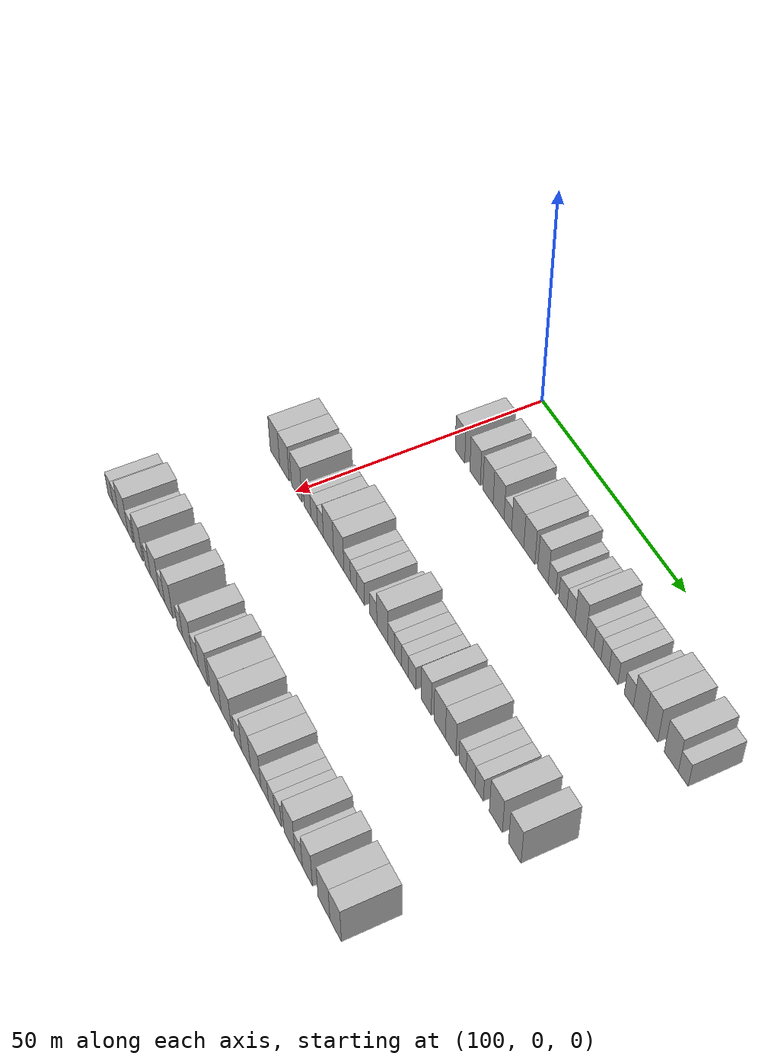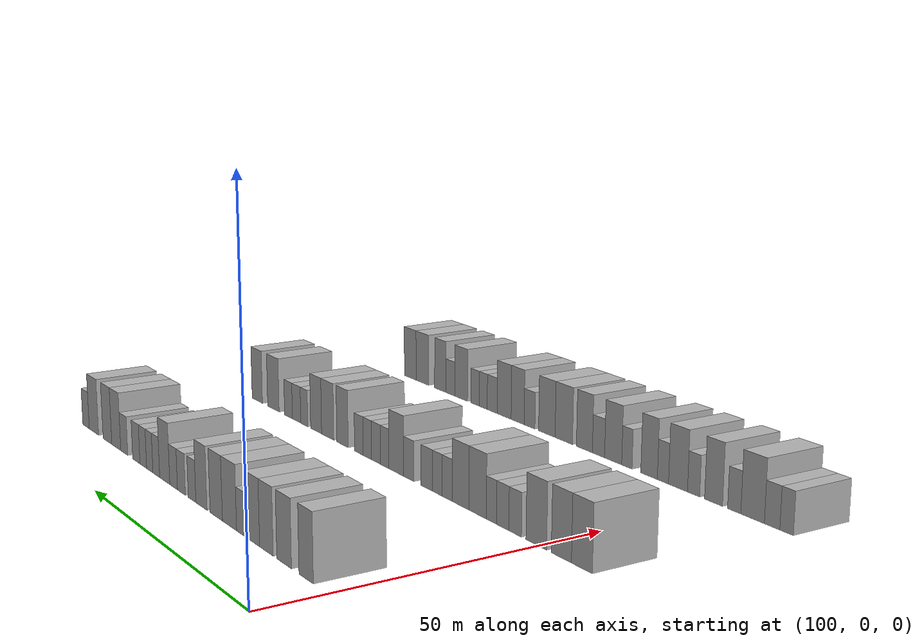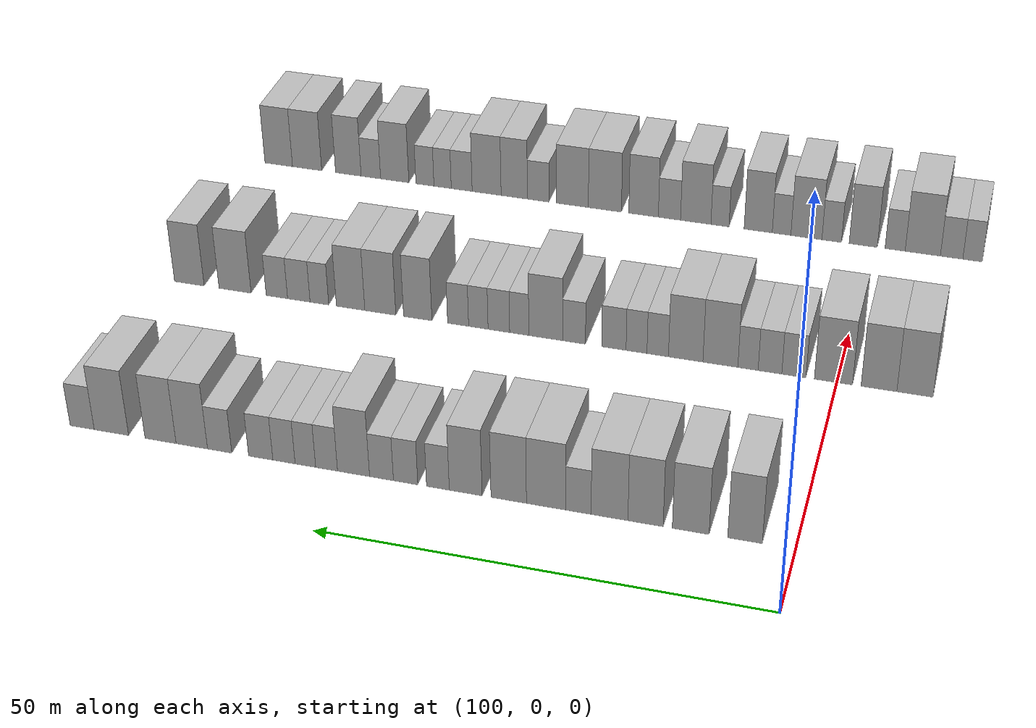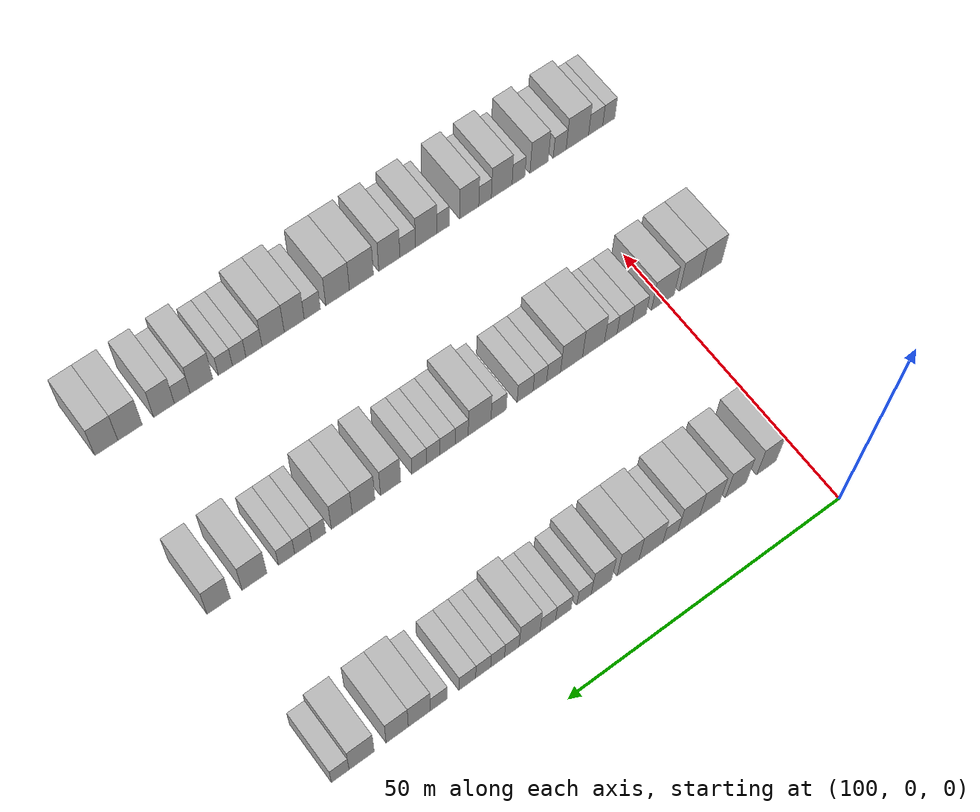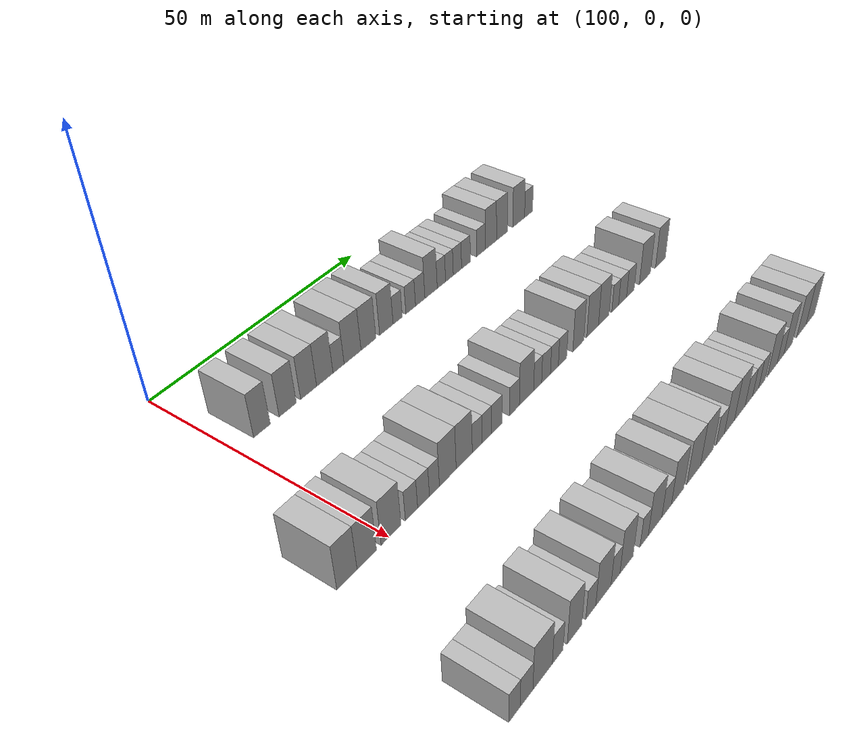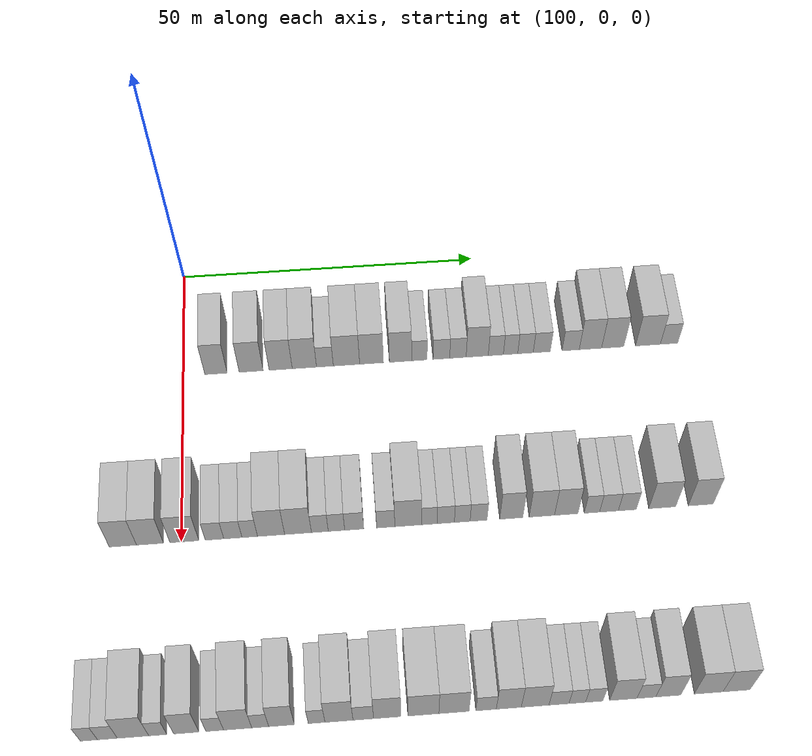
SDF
<sdf version="1.6">
 <world name="default">
  <model name="building_800">
   <static>1</static>
   <pose>115.0000 5.4240 0 0.000000 0.000000 0.000000</pose>
   <link name="link">
    <pose>0 0 4.50 0 0 0</pose>
    <collision name="collision"><geometry><box><size>10.0000 3.6990 9.0000</size></box></geometry></collision>
    <visual name="visual">
     <cast_shadows>0</cast_shadows>
     <geometry><box><size>10.0000 3.6990 9.0000</size></box></geometry>
     <material>
      <script>
       <uri>model://HANNAS_wall/materials/scripts</uri>
       <uri>model://HANNAS_wall/materials/textures</uri>
       <name>vrc/HANNAS_wall</name>
      </script>
     </material>
    </visual>
   </link>
  </model>
  <model name="building_801">
   <static>1</static>
   <pose>115.0000 11.2626 0 0.000000 0.000000 0.000000</pose>
   <link name="link">
    <pose>0 0 4.50 0 0 0</pose>
    <collision name="collision"><geometry><box><size>10.0000 3.9781 9.0000</size></box></geometry></collision>
    <visual name="visual">
     <cast_shadows>0</cast_shadows>
     <geometry><box><size>10.0000 3.9781 9.0000</size></box></geometry>
     <material>
      <script>
       <uri>model://HANNAS_wall/materials/scripts</uri>
       <uri>model://HANNAS_wall/materials/textures</uri>
       <name>vrc/HANNAS_wall</name>
      </script>
     </material>
    </visual>
   </link>
  </model>
  <model name="building_802">
   <static>1</static>
   <pose>115.0000 16.1757 0 0.000000 0.000000 0.000000</pose>
   <link name="link">
    <pose>0 0 4.50 0 0 0</pose>
    <collision name="collision"><geometry><box><size>10.0000 3.8481 9.0000</size></box></geometry></collision>
    <visual name="visual">
     <cast_shadows>0</cast_shadows>
     <geometry><box><size>10.0000 3.8481 9.0000</size></box></geometry>
     <material>
      <script>
       <uri>model://HANNAS_wall/materials/scripts</uri>
       <uri>model://HANNAS_wall/materials/textures</uri>
       <name>vrc/HANNAS_wall</name>
      </script>
     </material>
    </visual>
   </link>
  </model>
  <model name="building_803">
   <static>1</static>
   <pose>115.0000 20.1209 0 0.000000 0.000000 0.000000</pose>
   <link name="link">
    <pose>0 0 4.50 0 0 0</pose>
    <collision name="collision"><geometry><box><size>10.0000 4.0424 9.0000</size></box></geometry></collision>
    <visual name="visual">
     <cast_shadows>0</cast_shadows>
     <geometry><box><size>10.0000 4.0424 9.0000</size></box></geometry>
     <material>
      <script>
       <uri>model://HANNAS_wall/materials/scripts</uri>
       <uri>model://HANNAS_wall/materials/textures</uri>
       <name>vrc/HANNAS_wall</name>
      </script>
     </material>
    </visual>
   </link>
  </model>
  <model name="building_804">
   <static>1</static>
   <pose>115.0000 23.5391 0 0.000000 0.000000 0.000000</pose>
   <link name="link">
    <pose>0 0 3.00 0 0 0</pose>
    <collision name="collision"><geometry><box><size>10.0000 2.7940 6.0000</size></box></geometry></collision>
    <visual name="visual">
     <cast_shadows>0</cast_shadows>
     <geometry><box><size>10.0000 2.7940 6.0000</size></box></geometry>
     <material>
      <script>
       <uri>model://HANNAS_wall/materials/scripts</uri>
       <uri>model://HANNAS_wall/materials/textures</uri>
       <name>vrc/HANNAS_wall</name>
      </script>
     </material>
    </visual>
   </link>
  </model>
  <model name="building_805">
   <static>1</static>
   <pose>115.0000 27.1337 0 0.000000 0.000000 0.000000</pose>
   <link name="link">
    <pose>0 0 4.50 0 0 0</pose>
    <collision name="collision"><geometry><box><size>10.0000 4.3952 9.0000</size></box></geometry></collision>
    <visual name="visual">
     <cast_shadows>0</cast_shadows>
     <geometry><box><size>10.0000 4.3952 9.0000</size></box></geometry>
     <material>
      <script>
       <uri>model://HANNAS_wall/materials/scripts</uri>
       <uri>model://HANNAS_wall/materials/textures</uri>
       <name>vrc/HANNAS_wall</name>
      </script>
     </material>
    </visual>
   </link>
  </model>
  <model name="building_806">
   <static>1</static>
   <pose>115.0000 31.3223 0 0.000000 0.000000 0.000000</pose>
   <link name="link">
    <pose>0 0 4.50 0 0 0</pose>
    <collision name="collision"><geometry><box><size>10.0000 3.9819 9.0000</size></box></geometry></collision>
    <visual name="visual">
     <cast_shadows>0</cast_shadows>
     <geometry><box><size>10.0000 3.9819 9.0000</size></box></geometry>
     <material>
      <script>
       <uri>model://HANNAS_wall/materials/scripts</uri>
       <uri>model://HANNAS_wall/materials/textures</uri>
       <name>vrc/HANNAS_wall</name>
      </script>
     </material>
    </visual>
   </link>
  </model>
  <model name="building_807">
   <static>1</static>
   <pose>115.0000 36.1753 0 0.000000 0.000000 0.000000</pose>
   <link name="link">
    <pose>0 0 4.50 0 0 0</pose>
    <collision name="collision"><geometry><box><size>10.0000 3.7242 9.0000</size></box></geometry></collision>
    <visual name="visual">
     <cast_shadows>0</cast_shadows>
     <geometry><box><size>10.0000 3.7242 9.0000</size></box></geometry>
     <material>
      <script>
       <uri>model://HANNAS_wall/materials/scripts</uri>
       <uri>model://HANNAS_wall/materials/textures</uri>
       <name>vrc/HANNAS_wall</name>
      </script>
     </material>
    </visual>
   </link>
  </model>
  <model name="building_808">
   <static>1</static>
   <pose>115.0000 39.3347 0 0.000000 0.000000 0.000000</pose>
   <link name="link">
    <pose>0 0 3.00 0 0 0</pose>
    <collision name="collision"><geometry><box><size>10.0000 2.5946 6.0000</size></box></geometry></collision>
    <visual name="visual">
     <cast_shadows>0</cast_shadows>
     <geometry><box><size>10.0000 2.5946 6.0000</size></box></geometry>
     <material>
      <script>
       <uri>model://HANNAS_wall/materials/scripts</uri>
       <uri>model://HANNAS_wall/materials/textures</uri>
       <name>vrc/HANNAS_wall</name>
      </script>
     </material>
    </visual>
   </link>
  </model>
  <model name="building_809">
   <static>1</static>
   <pose>115.0000 43.0325 0 0.000000 0.000000 0.000000</pose>
   <link name="link">
    <pose>0 0 3.00 0 0 0</pose>
    <collision name="collision"><geometry><box><size>10.0000 2.8008 6.0000</size></box></geometry></collision>
    <visual name="visual">
     <cast_shadows>0</cast_shadows>
     <geometry><box><size>10.0000 2.8008 6.0000</size></box></geometry>
     <material>
      <script>
       <uri>model://HANNAS_wall/materials/scripts</uri>
       <uri>model://HANNAS_wall/materials/textures</uri>
       <name>vrc/HANNAS_wall</name>
      </script>
     </material>
    </visual>
   </link>
  </model>
  <model name="building_810">
   <static>1</static>
   <pose>115.0000 45.8110 0 0.000000 0.000000 0.000000</pose>
   <link name="link">
    <pose>0 0 3.00 0 0 0</pose>
    <collision name="collision"><geometry><box><size>10.0000 2.7562 6.0000</size></box></geometry></collision>
    <visual name="visual">
     <cast_shadows>0</cast_shadows>
     <geometry><box><size>10.0000 2.7562 6.0000</size></box></geometry>
     <material>
      <script>
       <uri>model://HANNAS_wall/materials/scripts</uri>
       <uri>model://HANNAS_wall/materials/textures</uri>
       <name>vrc/HANNAS_wall</name>
      </script>
     </material>
    </visual>
   </link>
  </model>
  <model name="building_811">
   <static>1</static>
   <pose>115.0000 49.0507 0 0.000000 0.000000 0.000000</pose>
   <link name="link">
    <pose>0 0 4.50 0 0 0</pose>
    <collision name="collision"><geometry><box><size>10.0000 3.7231 9.0000</size></box></geometry></collision>
    <visual name="visual">
     <cast_shadows>0</cast_shadows>
     <geometry><box><size>10.0000 3.7231 9.0000</size></box></geometry>
     <material>
      <script>
       <uri>model://HANNAS_wall/materials/scripts</uri>
       <uri>model://HANNAS_wall/materials/textures</uri>
       <name>vrc/HANNAS_wall</name>
      </script>
     </material>
    </visual>
   </link>
  </model>
  <model name="building_812">
   <static>1</static>
   <pose>115.0000 52.1887 0 0.000000 0.000000 0.000000</pose>
   <link name="link">
    <pose>0 0 3.00 0 0 0</pose>
    <collision name="collision"><geometry><box><size>10.0000 2.5530 6.0000</size></box></geometry></collision>
    <visual name="visual">
     <cast_shadows>0</cast_shadows>
     <geometry><box><size>10.0000 2.5530 6.0000</size></box></geometry>
     <material>
      <script>
       <uri>model://HANNAS_wall/materials/scripts</uri>
       <uri>model://HANNAS_wall/materials/textures</uri>
       <name>vrc/HANNAS_wall</name>
      </script>
     </material>
    </visual>
   </link>
  </model>
  <model name="building_813">
   <static>1</static>
   <pose>115.0000 54.6714 0 0.000000 0.000000 0.000000</pose>
   <link name="link">
    <pose>0 0 3.00 0 0 0</pose>
    <collision name="collision"><geometry><box><size>10.0000 2.4124 6.0000</size></box></geometry></collision>
    <visual name="visual">
     <cast_shadows>0</cast_shadows>
     <geometry><box><size>10.0000 2.4124 6.0000</size></box></geometry>
     <material>
      <script>
       <uri>model://HANNAS_wall/materials/scripts</uri>
       <uri>model://HANNAS_wall/materials/textures</uri>
       <name>vrc/HANNAS_wall</name>
      </script>
     </material>
    </visual>
   </link>
  </model>
  <model name="building_814">
   <static>1</static>
   <pose>115.0000 57.1901 0 0.000000 0.000000 0.000000</pose>
   <link name="link">
    <pose>0 0 3.00 0 0 0</pose>
    <collision name="collision"><geometry><box><size>10.0000 2.6251 6.0000</size></box></geometry></collision>
    <visual name="visual">
     <cast_shadows>0</cast_shadows>
     <geometry><box><size>10.0000 2.6251 6.0000</size></box></geometry>
     <material>
      <script>
       <uri>model://HANNAS_wall/materials/scripts</uri>
       <uri>model://HANNAS_wall/materials/textures</uri>
       <name>vrc/HANNAS_wall</name>
      </script>
     </material>
    </visual>
   </link>
  </model>
  <model name="building_815">
   <static>1</static>
   <pose>115.0000 59.9398 0 0.000000 0.000000 0.000000</pose>
   <link name="link">
    <pose>0 0 3.00 0 0 0</pose>
    <collision name="collision"><geometry><box><size>10.0000 2.8742 6.0000</size></box></geometry></collision>
    <visual name="visual">
     <cast_shadows>0</cast_shadows>
     <geometry><box><size>10.0000 2.8742 6.0000</size></box></geometry>
     <material>
      <script>
       <uri>model://HANNAS_wall/materials/scripts</uri>
       <uri>model://HANNAS_wall/materials/textures</uri>
       <name>vrc/HANNAS_wall</name>
      </script>
     </material>
    </visual>
   </link>
  </model>
  <model name="building_816">
   <static>1</static>
   <pose>115.0000 64.8309 0 0.000000 0.000000 0.000000</pose>
   <link name="link">
    <pose>0 0 3.00 0 0 0</pose>
    <collision name="collision"><geometry><box><size>10.0000 2.9080 6.0000</size></box></geometry></collision>
    <visual name="visual">
     <cast_shadows>0</cast_shadows>
     <geometry><box><size>10.0000 2.9080 6.0000</size></box></geometry>
     <material>
      <script>
       <uri>model://HANNAS_wall/materials/scripts</uri>
       <uri>model://HANNAS_wall/materials/textures</uri>
       <name>vrc/HANNAS_wall</name>
      </script>
     </material>
    </visual>
   </link>
  </model>
  <model name="building_817">
   <static>1</static>
   <pose>115.0000 68.1780 0 0.000000 0.000000 0.000000</pose>
   <link name="link">
    <pose>0 0 4.50 0 0 0</pose>
    <collision name="collision"><geometry><box><size>10.0000 3.7862 9.0000</size></box></geometry></collision>
    <visual name="visual">
     <cast_shadows>0</cast_shadows>
     <geometry><box><size>10.0000 3.7862 9.0000</size></box></geometry>
     <material>
      <script>
       <uri>model://HANNAS_wall/materials/scripts</uri>
       <uri>model://HANNAS_wall/materials/textures</uri>
       <name>vrc/HANNAS_wall</name>
      </script>
     </material>
    </visual>
   </link>
  </model>
  <model name="building_818">
   <static>1</static>
   <pose>115.0000 71.9529 0 0.000000 0.000000 0.000000</pose>
   <link name="link">
    <pose>0 0 4.50 0 0 0</pose>
    <collision name="collision"><geometry><box><size>10.0000 3.7634 9.0000</size></box></geometry></collision>
    <visual name="visual">
     <cast_shadows>0</cast_shadows>
     <geometry><box><size>10.0000 3.7634 9.0000</size></box></geometry>
     <material>
      <script>
       <uri>model://HANNAS_wall/materials/scripts</uri>
       <uri>model://HANNAS_wall/materials/textures</uri>
       <name>vrc/HANNAS_wall</name>
      </script>
     </material>
    </visual>
   </link>
  </model>
  <model name="building_819">
   <static>1</static>
   <pose>115.0000 77.9440 0 0.000000 0.000000 0.000000</pose>
   <link name="link">
    <pose>0 0 4.50 0 0 0</pose>
    <collision name="collision"><geometry><box><size>10.0000 4.2189 9.0000</size></box></geometry></collision>
    <visual name="visual">
     <cast_shadows>0</cast_shadows>
     <geometry><box><size>10.0000 4.2189 9.0000</size></box></geometry>
     <material>
      <script>
       <uri>model://HANNAS_wall/materials/scripts</uri>
       <uri>model://HANNAS_wall/materials/textures</uri>
       <name>vrc/HANNAS_wall</name>
      </script>
     </material>
    </visual>
   </link>
  </model>
  <model name="building_820">
   <static>1</static>
   <pose>115.0000 81.5284 0 0.000000 0.000000 0.000000</pose>
   <link name="link">
    <pose>0 0 3.00 0 0 0</pose>
    <collision name="collision"><geometry><box><size>10.0000 2.9500 6.0000</size></box></geometry></collision>
    <visual name="visual">
     <cast_shadows>0</cast_shadows>
     <geometry><box><size>10.0000 2.9500 6.0000</size></box></geometry>
     <material>
      <script>
       <uri>model://HANNAS_wall/materials/scripts</uri>
       <uri>model://HANNAS_wall/materials/textures</uri>
       <name>vrc/HANNAS_wall</name>
      </script>
     </material>
    </visual>
   </link>
  </model>
  <model name="building_1029">
   <static>1</static>
   <pose>145.0000 -9.0415 0 0.000000 0.000000 0.000000</pose>
   <link name="link">
    <pose>0 0 4.50 0 0 0</pose>
    <collision name="collision"><geometry><box><size>10.0000 4.1843 9.0000</size></box></geometry></collision>
    <visual name="visual">
     <cast_shadows>0</cast_shadows>
     <geometry><box><size>10.0000 4.1843 9.0000</size></box></geometry>
     <material>
      <script>
       <uri>model://HANNAS_wall/materials/scripts</uri>
       <uri>model://HANNAS_wall/materials/textures</uri>
       <name>vrc/HANNAS_wall</name>
      </script>
     </material>
    </visual>
   </link>
  </model>
  <model name="building_1030">
   <static>1</static>
   <pose>145.0000 -4.8703 0 0.000000 0.000000 0.000000</pose>
   <link name="link">
    <pose>0 0 4.50 0 0 0</pose>
    <collision name="collision"><geometry><box><size>10.0000 4.1581 9.0000</size></box></geometry></collision>
    <visual name="visual">
     <cast_shadows>0</cast_shadows>
     <geometry><box><size>10.0000 4.1581 9.0000</size></box></geometry>
     <material>
      <script>
       <uri>model://HANNAS_wall/materials/scripts</uri>
       <uri>model://HANNAS_wall/materials/textures</uri>
       <name>vrc/HANNAS_wall</name>
      </script>
     </material>
    </visual>
   </link>
  </model>
  <model name="building_1031">
   <static>1</static>
   <pose>145.0000 0.4432 0 0.000000 0.000000 0.000000</pose>
   <link name="link">
    <pose>0 0 4.50 0 0 0</pose>
    <collision name="collision"><geometry><box><size>10.0000 4.4689 9.0000</size></box></geometry></collision>
    <visual name="visual">
     <cast_shadows>0</cast_shadows>
     <geometry><box><size>10.0000 4.4689 9.0000</size></box></geometry>
     <material>
      <script>
       <uri>model://HANNAS_wall/materials/scripts</uri>
       <uri>model://HANNAS_wall/materials/textures</uri>
       <name>vrc/HANNAS_wall</name>
      </script>
     </material>
    </visual>
   </link>
  </model>
  <model name="building_1032">
   <static>1</static>
   <pose>145.0000 5.1037 0 0.000000 0.000000 0.000000</pose>
   <link name="link">
    <pose>0 0 3.00 0 0 0</pose>
    <collision name="collision"><geometry><box><size>10.0000 2.8523 6.0000</size></box></geometry></collision>
    <visual name="visual">
     <cast_shadows>0</cast_shadows>
     <geometry><box><size>10.0000 2.8523 6.0000</size></box></geometry>
     <material>
      <script>
       <uri>model://HANNAS_wall/materials/scripts</uri>
       <uri>model://HANNAS_wall/materials/textures</uri>
       <name>vrc/HANNAS_wall</name>
      </script>
     </material>
    </visual>
   </link>
  </model>
  <model name="building_1033">
   <static>1</static>
   <pose>145.0000 7.9373 0 0.000000 0.000000 0.000000</pose>
   <link name="link">
    <pose>0 0 3.00 0 0 0</pose>
    <collision name="collision"><geometry><box><size>10.0000 2.8149 6.0000</size></box></geometry></collision>
    <visual name="visual">
     <cast_shadows>0</cast_shadows>
     <geometry><box><size>10.0000 2.8149 6.0000</size></box></geometry>
     <material>
      <script>
       <uri>model://HANNAS_wall/materials/scripts</uri>
       <uri>model://HANNAS_wall/materials/textures</uri>
       <name>vrc/HANNAS_wall</name>
      </script>
     </material>
    </visual>
   </link>
  </model>
  <model name="building_1034">
   <static>1</static>
   <pose>145.0000 10.5543 0 0.000000 0.000000 0.000000</pose>
   <link name="link">
    <pose>0 0 3.00 0 0 0</pose>
    <collision name="collision"><geometry><box><size>10.0000 2.4190 6.0000</size></box></geometry></collision>
    <visual name="visual">
     <cast_shadows>0</cast_shadows>
     <geometry><box><size>10.0000 2.4190 6.0000</size></box></geometry>
     <material>
      <script>
       <uri>model://HANNAS_wall/materials/scripts</uri>
       <uri>model://HANNAS_wall/materials/textures</uri>
       <name>vrc/HANNAS_wall</name>
      </script>
     </material>
    </visual>
   </link>
  </model>
  <model name="building_1035">
   <static>1</static>
   <pose>145.0000 13.8635 0 0.000000 0.000000 0.000000</pose>
   <link name="link">
    <pose>0 0 4.50 0 0 0</pose>
    <collision name="collision"><geometry><box><size>10.0000 4.1994 9.0000</size></box></geometry></collision>
    <visual name="visual">
     <cast_shadows>0</cast_shadows>
     <geometry><box><size>10.0000 4.1994 9.0000</size></box></geometry>
     <material>
      <script>
       <uri>model://HANNAS_wall/materials/scripts</uri>
       <uri>model://HANNAS_wall/materials/textures</uri>
       <name>vrc/HANNAS_wall</name>
      </script>
     </material>
    </visual>
   </link>
  </model>
  <model name="building_1036">
   <static>1</static>
   <pose>145.0000 18.0464 0 0.000000 0.000000 0.000000</pose>
   <link name="link">
    <pose>0 0 4.50 0 0 0</pose>
    <collision name="collision"><geometry><box><size>10.0000 4.1662 9.0000</size></box></geometry></collision>
    <visual name="visual">
     <cast_shadows>0</cast_shadows>
     <geometry><box><size>10.0000 4.1662 9.0000</size></box></geometry>
     <material>
      <script>
       <uri>model://HANNAS_wall/materials/scripts</uri>
       <uri>model://HANNAS_wall/materials/textures</uri>
       <name>vrc/HANNAS_wall</name>
      </script>
     </material>
    </visual>
   </link>
  </model>
  <model name="building_1037">
   <static>1</static>
   <pose>145.0000 21.4383 0 0.000000 0.000000 0.000000</pose>
   <link name="link">
    <pose>0 0 3.00 0 0 0</pose>
    <collision name="collision"><geometry><box><size>10.0000 2.6176 6.0000</size></box></geometry></collision>
    <visual name="visual">
     <cast_shadows>0</cast_shadows>
     <geometry><box><size>10.0000 2.6176 6.0000</size></box></geometry>
     <material>
      <script>
       <uri>model://HANNAS_wall/materials/scripts</uri>
       <uri>model://HANNAS_wall/materials/textures</uri>
       <name>vrc/HANNAS_wall</name>
      </script>
     </material>
    </visual>
   </link>
  </model>
  <model name="building_1038">
   <static>1</static>
   <pose>145.0000 24.0234 0 0.000000 0.000000 0.000000</pose>
   <link name="link">
    <pose>0 0 3.00 0 0 0</pose>
    <collision name="collision"><geometry><box><size>10.0000 2.5527 6.0000</size></box></geometry></collision>
    <visual name="visual">
     <cast_shadows>0</cast_shadows>
     <geometry><box><size>10.0000 2.5527 6.0000</size></box></geometry>
     <material>
      <script>
       <uri>model://HANNAS_wall/materials/scripts</uri>
       <uri>model://HANNAS_wall/materials/textures</uri>
       <name>vrc/HANNAS_wall</name>
      </script>
     </material>
    </visual>
   </link>
  </model>
  <model name="building_1039">
   <static>1</static>
   <pose>145.0000 26.7918 0 0.000000 0.000000 0.000000</pose>
   <link name="link">
    <pose>0 0 3.00 0 0 0</pose>
    <collision name="collision"><geometry><box><size>10.0000 2.9842 6.0000</size></box></geometry></collision>
    <visual name="visual">
     <cast_shadows>0</cast_shadows>
     <geometry><box><size>10.0000 2.9842 6.0000</size></box></geometry>
     <material>
      <script>
       <uri>model://HANNAS_wall/materials/scripts</uri>
       <uri>model://HANNAS_wall/materials/textures</uri>
       <name>vrc/HANNAS_wall</name>
      </script>
     </material>
    </visual>
   </link>
  </model>
  <model name="building_1040">
   <static>1</static>
   <pose>145.0000 31.7033 0 0.000000 0.000000 0.000000</pose>
   <link name="link">
    <pose>0 0 3.00 0 0 0</pose>
    <collision name="collision"><geometry><box><size>10.0000 2.8388 6.0000</size></box></geometry></collision>
    <visual name="visual">
     <cast_shadows>0</cast_shadows>
     <geometry><box><size>10.0000 2.8388 6.0000</size></box></geometry>
     <material>
      <script>
       <uri>model://HANNAS_wall/materials/scripts</uri>
       <uri>model://HANNAS_wall/materials/textures</uri>
       <name>vrc/HANNAS_wall</name>
      </script>
     </material>
    </visual>
   </link>
  </model>
  <model name="building_1041">
   <static>1</static>
   <pose>145.0000 35.2218 0 0.000000 0.000000 0.000000</pose>
   <link name="link">
    <pose>0 0 4.50 0 0 0</pose>
    <collision name="collision"><geometry><box><size>10.0000 4.1982 9.0000</size></box></geometry></collision>
    <visual name="visual">
     <cast_shadows>0</cast_shadows>
     <geometry><box><size>10.0000 4.1982 9.0000</size></box></geometry>
     <material>
      <script>
       <uri>model://HANNAS_wall/materials/scripts</uri>
       <uri>model://HANNAS_wall/materials/textures</uri>
       <name>vrc/HANNAS_wall</name>
      </script>
     </material>
    </visual>
   </link>
  </model>
  <model name="building_1042">
   <static>1</static>
   <pose>145.0000 38.5242 0 0.000000 0.000000 0.000000</pose>
   <link name="link">
    <pose>0 0 3.00 0 0 0</pose>
    <collision name="collision"><geometry><box><size>10.0000 2.4064 6.0000</size></box></geometry></collision>
    <visual name="visual">
     <cast_shadows>0</cast_shadows>
     <geometry><box><size>10.0000 2.4064 6.0000</size></box></geometry>
     <material>
      <script>
       <uri>model://HANNAS_wall/materials/scripts</uri>
       <uri>model://HANNAS_wall/materials/textures</uri>
       <name>vrc/HANNAS_wall</name>
      </script>
     </material>
    </visual>
   </link>
  </model>
  <model name="building_1043">
   <static>1</static>
   <pose>145.0000 41.0874 0 0.000000 0.000000 0.000000</pose>
   <link name="link">
    <pose>0 0 3.00 0 0 0</pose>
    <collision name="collision"><geometry><box><size>10.0000 2.7201 6.0000</size></box></geometry></collision>
    <visual name="visual">
     <cast_shadows>0</cast_shadows>
     <geometry><box><size>10.0000 2.7201 6.0000</size></box></geometry>
     <material>
      <script>
       <uri>model://HANNAS_wall/materials/scripts</uri>
       <uri>model://HANNAS_wall/materials/textures</uri>
       <name>vrc/HANNAS_wall</name>
      </script>
     </material>
    </visual>
   </link>
  </model>
  <model name="building_1044">
   <static>1</static>
   <pose>145.0000 43.6784 0 0.000000 0.000000 0.000000</pose>
   <link name="link">
    <pose>0 0 3.00 0 0 0</pose>
    <collision name="collision"><geometry><box><size>10.0000 2.4619 6.0000</size></box></geometry></collision>
    <visual name="visual">
     <cast_shadows>0</cast_shadows>
     <geometry><box><size>10.0000 2.4619 6.0000</size></box></geometry>
     <material>
      <script>
       <uri>model://HANNAS_wall/materials/scripts</uri>
       <uri>model://HANNAS_wall/materials/textures</uri>
       <name>vrc/HANNAS_wall</name>
      </script>
     </material>
    </visual>
   </link>
  </model>
  <model name="building_1045">
   <static>1</static>
   <pose>145.0000 46.2387 0 0.000000 0.000000 0.000000</pose>
   <link name="link">
    <pose>0 0 3.00 0 0 0</pose>
    <collision name="collision"><geometry><box><size>10.0000 2.6587 6.0000</size></box></geometry></collision>
    <visual name="visual">
     <cast_shadows>0</cast_shadows>
     <geometry><box><size>10.0000 2.6587 6.0000</size></box></geometry>
     <material>
      <script>
       <uri>model://HANNAS_wall/materials/scripts</uri>
       <uri>model://HANNAS_wall/materials/textures</uri>
       <name>vrc/HANNAS_wall</name>
      </script>
     </material>
    </visual>
   </link>
  </model>
  <model name="building_1046">
   <static>1</static>
   <pose>145.0000 51.3816 0 0.000000 0.000000 0.000000</pose>
   <link name="link">
    <pose>0 0 4.50 0 0 0</pose>
    <collision name="collision"><geometry><box><size>10.0000 3.6272 9.0000</size></box></geometry></collision>
    <visual name="visual">
     <cast_shadows>0</cast_shadows>
     <geometry><box><size>10.0000 3.6272 9.0000</size></box></geometry>
     <material>
      <script>
       <uri>model://HANNAS_wall/materials/scripts</uri>
       <uri>model://HANNAS_wall/materials/textures</uri>
       <name>vrc/HANNAS_wall</name>
      </script>
     </material>
    </visual>
   </link>
  </model>
  <model name="building_1047">
   <static>1</static>
   <pose>145.0000 56.1976 0 0.000000 0.000000 0.000000</pose>
   <link name="link">
    <pose>0 0 4.50 0 0 0</pose>
    <collision name="collision"><geometry><box><size>10.0000 4.0047 9.0000</size></box></geometry></collision>
    <visual name="visual">
     <cast_shadows>0</cast_shadows>
     <geometry><box><size>10.0000 4.0047 9.0000</size></box></geometry>
     <material>
      <script>
       <uri>model://HANNAS_wall/materials/scripts</uri>
       <uri>model://HANNAS_wall/materials/textures</uri>
       <name>vrc/HANNAS_wall</name>
      </script>
     </material>
    </visual>
   </link>
  </model>
  <model name="building_1048">
   <static>1</static>
   <pose>145.0000 60.0453 0 0.000000 0.000000 0.000000</pose>
   <link name="link">
    <pose>0 0 4.50 0 0 0</pose>
    <collision name="collision"><geometry><box><size>10.0000 3.6908 9.0000</size></box></geometry></collision>
    <visual name="visual">
     <cast_shadows>0</cast_shadows>
     <geometry><box><size>10.0000 3.6908 9.0000</size></box></geometry>
     <material>
      <script>
       <uri>model://HANNAS_wall/materials/scripts</uri>
       <uri>model://HANNAS_wall/materials/textures</uri>
       <name>vrc/HANNAS_wall</name>
      </script>
     </material>
    </visual>
   </link>
  </model>
  <model name="building_1049">
   <static>1</static>
   <pose>145.0000 64.1111 0 0.000000 0.000000 0.000000</pose>
   <link name="link">
    <pose>0 0 3.00 0 0 0</pose>
    <collision name="collision"><geometry><box><size>10.0000 2.4407 6.0000</size></box></geometry></collision>
    <visual name="visual">
     <cast_shadows>0</cast_shadows>
     <geometry><box><size>10.0000 2.4407 6.0000</size></box></geometry>
     <material>
      <script>
       <uri>model://HANNAS_wall/materials/scripts</uri>
       <uri>model://HANNAS_wall/materials/textures</uri>
       <name>vrc/HANNAS_wall</name>
      </script>
     </material>
    </visual>
   </link>
  </model>
  <model name="building_1050">
   <static>1</static>
   <pose>145.0000 66.8066 0 0.000000 0.000000 0.000000</pose>
   <link name="link">
    <pose>0 0 3.00 0 0 0</pose>
    <collision name="collision"><geometry><box><size>10.0000 2.9504 6.0000</size></box></geometry></collision>
    <visual name="visual">
     <cast_shadows>0</cast_shadows>
     <geometry><box><size>10.0000 2.9504 6.0000</size></box></geometry>
     <material>
      <script>
       <uri>model://HANNAS_wall/materials/scripts</uri>
       <uri>model://HANNAS_wall/materials/textures</uri>
       <name>vrc/HANNAS_wall</name>
      </script>
     </material>
    </visual>
   </link>
  </model>
  <model name="building_1051">
   <static>1</static>
   <pose>145.0000 69.6955 0 0.000000 0.000000 0.000000</pose>
   <link name="link">
    <pose>0 0 3.00 0 0 0</pose>
    <collision name="collision"><geometry><box><size>10.0000 2.8273 6.0000</size></box></geometry></collision>
    <visual name="visual">
     <cast_shadows>0</cast_shadows>
     <geometry><box><size>10.0000 2.8273 6.0000</size></box></geometry>
     <material>
      <script>
       <uri>model://HANNAS_wall/materials/scripts</uri>
       <uri>model://HANNAS_wall/materials/textures</uri>
       <name>vrc/HANNAS_wall</name>
      </script>
     </material>
    </visual>
   </link>
  </model>
  <model name="building_1052">
   <static>1</static>
   <pose>145.0000 75.2446 0 0.000000 0.000000 0.000000</pose>
   <link name="link">
    <pose>0 0 4.50 0 0 0</pose>
    <collision name="collision"><geometry><box><size>10.0000 4.2707 9.0000</size></box></geometry></collision>
    <visual name="visual">
     <cast_shadows>0</cast_shadows>
     <geometry><box><size>10.0000 4.2707 9.0000</size></box></geometry>
     <material>
      <script>
       <uri>model://HANNAS_wall/materials/scripts</uri>
       <uri>model://HANNAS_wall/materials/textures</uri>
       <name>vrc/HANNAS_wall</name>
      </script>
     </material>
    </visual>
   </link>
  </model>
  <model name="building_1053">
   <static>1</static>
   <pose>145.0000 81.3668 0 0.000000 0.000000 0.000000</pose>
   <link name="link">
    <pose>0 0 4.50 0 0 0</pose>
    <collision name="collision"><geometry><box><size>10.0000 3.9738 9.0000</size></box></geometry></collision>
    <visual name="visual">
     <cast_shadows>0</cast_shadows>
     <geometry><box><size>10.0000 3.9738 9.0000</size></box></geometry>
     <material>
      <script>
       <uri>model://HANNAS_wall/materials/scripts</uri>
       <uri>model://HANNAS_wall/materials/textures</uri>
       <name>vrc/HANNAS_wall</name>
      </script>
     </material>
    </visual>
   </link>
  </model>
  <model name="building_1255">
   <static>1</static>
   <pose>175.0000 -12.9567 0 0.000000 0.000000 0.000000</pose>
   <link name="link">
    <pose>0 0 3.00 0 0 0</pose>
    <collision name="collision"><geometry><box><size>10.0000 2.4534 6.0000</size></box></geometry></collision>
    <visual name="visual">
     <cast_shadows>0</cast_shadows>
     <geometry><box><size>10.0000 2.4534 6.0000</size></box></geometry>
     <material>
      <script>
       <uri>model://HANNAS_wall/materials/scripts</uri>
       <uri>model://HANNAS_wall/materials/textures</uri>
       <name>vrc/HANNAS_wall</name>
      </script>
     </material>
    </visual>
   </link>
  </model>
  <model name="building_1256">
   <static>1</static>
   <pose>175.0000 -10.3086 0 0.000000 0.000000 0.000000</pose>
   <link name="link">
    <pose>0 0 3.00 0 0 0</pose>
    <collision name="collision"><geometry><box><size>10.0000 2.8428 6.0000</size></box></geometry></collision>
    <visual name="visual">
     <cast_shadows>0</cast_shadows>
     <geometry><box><size>10.0000 2.8428 6.0000</size></box></geometry>
     <material>
      <script>
       <uri>model://HANNAS_wall/materials/scripts</uri>
       <uri>model://HANNAS_wall/materials/textures</uri>
       <name>vrc/HANNAS_wall</name>
      </script>
     </material>
    </visual>
   </link>
  </model>
  <model name="building_1257">
   <static>1</static>
   <pose>175.0000 -6.6453 0 0.000000 0.000000 0.000000</pose>
   <link name="link">
    <pose>0 0 4.50 0 0 0</pose>
    <collision name="collision"><geometry><box><size>10.0000 4.4838 9.0000</size></box></geometry></collision>
    <visual name="visual">
     <cast_shadows>0</cast_shadows>
     <geometry><box><size>10.0000 4.4838 9.0000</size></box></geometry>
     <material>
      <script>
       <uri>model://HANNAS_wall/materials/scripts</uri>
       <uri>model://HANNAS_wall/materials/textures</uri>
       <name>vrc/HANNAS_wall</name>
      </script>
     </material>
    </visual>
   </link>
  </model>
  <model name="building_1258">
   <static>1</static>
   <pose>175.0000 -3.1174 0 0.000000 0.000000 0.000000</pose>
   <link name="link">
    <pose>0 0 3.00 0 0 0</pose>
    <collision name="collision"><geometry><box><size>10.0000 2.5720 6.0000</size></box></geometry></collision>
    <visual name="visual">
     <cast_shadows>0</cast_shadows>
     <geometry><box><size>10.0000 2.5720 6.0000</size></box></geometry>
     <material>
      <script>
       <uri>model://HANNAS_wall/materials/scripts</uri>
       <uri>model://HANNAS_wall/materials/textures</uri>
       <name>vrc/HANNAS_wall</name>
      </script>
     </material>
    </visual>
   </link>
  </model>
  <model name="building_1259">
   <static>1</static>
   <pose>175.0000 0.9778 0 0.000000 0.000000 0.000000</pose>
   <link name="link">
    <pose>0 0 4.50 0 0 0</pose>
    <collision name="collision"><geometry><box><size>10.0000 3.6185 9.0000</size></box></geometry></collision>
    <visual name="visual">
     <cast_shadows>0</cast_shadows>
     <geometry><box><size>10.0000 3.6185 9.0000</size></box></geometry>
     <material>
      <script>
       <uri>model://HANNAS_wall/materials/scripts</uri>
       <uri>model://HANNAS_wall/materials/textures</uri>
       <name>vrc/HANNAS_wall</name>
      </script>
     </material>
    </visual>
   </link>
  </model>
  <model name="building_1260">
   <static>1</static>
   <pose>175.0000 5.0539 0 0.000000 0.000000 0.000000</pose>
   <link name="link">
    <pose>0 0 3.00 0 0 0</pose>
    <collision name="collision"><geometry><box><size>10.0000 2.5337 6.0000</size></box></geometry></collision>
    <visual name="visual">
     <cast_shadows>0</cast_shadows>
     <geometry><box><size>10.0000 2.5337 6.0000</size></box></geometry>
     <material>
      <script>
       <uri>model://HANNAS_wall/materials/scripts</uri>
       <uri>model://HANNAS_wall/materials/textures</uri>
       <name>vrc/HANNAS_wall</name>
      </script>
     </material>
    </visual>
   </link>
  </model>
  <model name="building_1261">
   <static>1</static>
   <pose>175.0000 8.3448 0 0.000000 0.000000 0.000000</pose>
   <link name="link">
    <pose>0 0 4.50 0 0 0</pose>
    <collision name="collision"><geometry><box><size>10.0000 4.0480 9.0000</size></box></geometry></collision>
    <visual name="visual">
     <cast_shadows>0</cast_shadows>
     <geometry><box><size>10.0000 4.0480 9.0000</size></box></geometry>
     <material>
      <script>
       <uri>model://HANNAS_wall/materials/scripts</uri>
       <uri>model://HANNAS_wall/materials/textures</uri>
       <name>vrc/HANNAS_wall</name>
      </script>
     </material>
    </visual>
   </link>
  </model>
  <model name="building_1262">
   <static>1</static>
   <pose>175.0000 11.5893 0 0.000000 0.000000 0.000000</pose>
   <link name="link">
    <pose>0 0 3.00 0 0 0</pose>
    <collision name="collision"><geometry><box><size>10.0000 2.4410 6.0000</size></box></geometry></collision>
    <visual name="visual">
     <cast_shadows>0</cast_shadows>
     <geometry><box><size>10.0000 2.4410 6.0000</size></box></geometry>
     <material>
      <script>
       <uri>model://HANNAS_wall/materials/scripts</uri>
       <uri>model://HANNAS_wall/materials/textures</uri>
       <name>vrc/HANNAS_wall</name>
      </script>
     </material>
    </visual>
   </link>
  </model>
  <model name="building_1263">
   <static>1</static>
   <pose>175.0000 14.6590 0 0.000000 0.000000 0.000000</pose>
   <link name="link">
    <pose>0 0 4.50 0 0 0</pose>
    <collision name="collision"><geometry><box><size>10.0000 3.6986 9.0000</size></box></geometry></collision>
    <visual name="visual">
     <cast_shadows>0</cast_shadows>
     <geometry><box><size>10.0000 3.6986 9.0000</size></box></geometry>
     <material>
      <script>
       <uri>model://HANNAS_wall/materials/scripts</uri>
       <uri>model://HANNAS_wall/materials/textures</uri>
       <name>vrc/HANNAS_wall</name>
      </script>
     </material>
    </visual>
   </link>
  </model>
  <model name="building_1264">
   <static>1</static>
   <pose>175.0000 19.7101 0 0.000000 0.000000 0.000000</pose>
   <link name="link">
    <pose>0 0 3.00 0 0 0</pose>
    <collision name="collision"><geometry><box><size>10.0000 2.4034 6.0000</size></box></geometry></collision>
    <visual name="visual">
     <cast_shadows>0</cast_shadows>
     <geometry><box><size>10.0000 2.4034 6.0000</size></box></geometry>
     <material>
      <script>
       <uri>model://HANNAS_wall/materials/scripts</uri>
       <uri>model://HANNAS_wall/materials/textures</uri>
       <name>vrc/HANNAS_wall</name>
      </script>
     </material>
    </visual>
   </link>
  </model>
  <model name="building_1265">
   <static>1</static>
   <pose>175.0000 22.9422 0 0.000000 0.000000 0.000000</pose>
   <link name="link">
    <pose>0 0 4.50 0 0 0</pose>
    <collision name="collision"><geometry><box><size>10.0000 4.0608 9.0000</size></box></geometry></collision>
    <visual name="visual">
     <cast_shadows>0</cast_shadows>
     <geometry><box><size>10.0000 4.0608 9.0000</size></box></geometry>
     <material>
      <script>
       <uri>model://HANNAS_wall/materials/scripts</uri>
       <uri>model://HANNAS_wall/materials/textures</uri>
       <name>vrc/HANNAS_wall</name>
      </script>
     </material>
    </visual>
   </link>
  </model>
  <model name="building_1266">
   <static>1</static>
   <pose>175.0000 26.4582 0 0.000000 0.000000 0.000000</pose>
   <link name="link">
    <pose>0 0 3.00 0 0 0</pose>
    <collision name="collision"><geometry><box><size>10.0000 2.9711 6.0000</size></box></geometry></collision>
    <visual name="visual">
     <cast_shadows>0</cast_shadows>
     <geometry><box><size>10.0000 2.9711 6.0000</size></box></geometry>
     <material>
      <script>
       <uri>model://HANNAS_wall/materials/scripts</uri>
       <uri>model://HANNAS_wall/materials/textures</uri>
       <name>vrc/HANNAS_wall</name>
      </script>
     </material>
    </visual>
   </link>
  </model>
  <model name="building_1267">
   <static>1</static>
   <pose>175.0000 29.9329 0 0.000000 0.000000 0.000000</pose>
   <link name="link">
    <pose>0 0 4.50 0 0 0</pose>
    <collision name="collision"><geometry><box><size>10.0000 3.9784 9.0000</size></box></geometry></collision>
    <visual name="visual">
     <cast_shadows>0</cast_shadows>
     <geometry><box><size>10.0000 3.9784 9.0000</size></box></geometry>
     <material>
      <script>
       <uri>model://HANNAS_wall/materials/scripts</uri>
       <uri>model://HANNAS_wall/materials/textures</uri>
       <name>vrc/HANNAS_wall</name>
      </script>
     </material>
    </visual>
   </link>
  </model>
  <model name="building_1268">
   <static>1</static>
   <pose>175.0000 35.1706 0 0.000000 0.000000 0.000000</pose>
   <link name="link">
    <pose>0 0 4.50 0 0 0</pose>
    <collision name="collision"><geometry><box><size>10.0000 4.4969 9.0000</size></box></geometry></collision>
    <visual name="visual">
     <cast_shadows>0</cast_shadows>
     <geometry><box><size>10.0000 4.4969 9.0000</size></box></geometry>
     <material>
      <script>
       <uri>model://HANNAS_wall/materials/scripts</uri>
       <uri>model://HANNAS_wall/materials/textures</uri>
       <name>vrc/HANNAS_wall</name>
      </script>
     </material>
    </visual>
   </link>
  </model>
  <model name="building_1269">
   <static>1</static>
   <pose>175.0000 39.6137 0 0.000000 0.000000 0.000000</pose>
   <link name="link">
    <pose>0 0 4.50 0 0 0</pose>
    <collision name="collision"><geometry><box><size>10.0000 4.3892 9.0000</size></box></geometry></collision>
    <visual name="visual">
     <cast_shadows>0</cast_shadows>
     <geometry><box><size>10.0000 4.3892 9.0000</size></box></geometry>
     <material>
      <script>
       <uri>model://HANNAS_wall/materials/scripts</uri>
       <uri>model://HANNAS_wall/materials/textures</uri>
       <name>vrc/HANNAS_wall</name>
      </script>
     </material>
    </visual>
   </link>
  </model>
  <model name="building_1270">
   <static>1</static>
   <pose>175.0000 44.2929 0 0.000000 0.000000 0.000000</pose>
   <link name="link">
    <pose>0 0 3.00 0 0 0</pose>
    <collision name="collision"><geometry><box><size>10.0000 2.9692 6.0000</size></box></geometry></collision>
    <visual name="visual">
     <cast_shadows>0</cast_shadows>
     <geometry><box><size>10.0000 2.9692 6.0000</size></box></geometry>
     <material>
      <script>
       <uri>model://HANNAS_wall/materials/scripts</uri>
       <uri>model://HANNAS_wall/materials/textures</uri>
       <name>vrc/HANNAS_wall</name>
      </script>
     </material>
    </visual>
   </link>
  </model>
  <model name="building_1271">
   <static>1</static>
   <pose>175.0000 47.6049 0 0.000000 0.000000 0.000000</pose>
   <link name="link">
    <pose>0 0 4.50 0 0 0</pose>
    <collision name="collision"><geometry><box><size>10.0000 3.6548 9.0000</size></box></geometry></collision>
    <visual name="visual">
     <cast_shadows>0</cast_shadows>
     <geometry><box><size>10.0000 3.6548 9.0000</size></box></geometry>
     <material>
      <script>
       <uri>model://HANNAS_wall/materials/scripts</uri>
       <uri>model://HANNAS_wall/materials/textures</uri>
       <name>vrc/HANNAS_wall</name>
      </script>
     </material>
    </visual>
   </link>
  </model>
  <model name="building_1272">
   <static>1</static>
   <pose>175.0000 51.4524 0 0.000000 0.000000 0.000000</pose>
   <link name="link">
    <pose>0 0 4.50 0 0 0</pose>
    <collision name="collision"><geometry><box><size>10.0000 4.0401 9.0000</size></box></geometry></collision>
    <visual name="visual">
     <cast_shadows>0</cast_shadows>
     <geometry><box><size>10.0000 4.0401 9.0000</size></box></geometry>
     <material>
      <script>
       <uri>model://HANNAS_wall/materials/scripts</uri>
       <uri>model://HANNAS_wall/materials/textures</uri>
       <name>vrc/HANNAS_wall</name>
      </script>
     </material>
    </visual>
   </link>
  </model>
  <model name="building_1273">
   <static>1</static>
   <pose>175.0000 54.9364 0 0.000000 0.000000 0.000000</pose>
   <link name="link">
    <pose>0 0 3.00 0 0 0</pose>
    <collision name="collision"><geometry><box><size>10.0000 2.9280 6.0000</size></box></geometry></collision>
    <visual name="visual">
     <cast_shadows>0</cast_shadows>
     <geometry><box><size>10.0000 2.9280 6.0000</size></box></geometry>
     <material>
      <script>
       <uri>model://HANNAS_wall/materials/scripts</uri>
       <uri>model://HANNAS_wall/materials/textures</uri>
       <name>vrc/HANNAS_wall</name>
      </script>
     </material>
    </visual>
   </link>
  </model>
  <model name="building_1274">
   <static>1</static>
   <pose>175.0000 57.6181 0 0.000000 0.000000 0.000000</pose>
   <link name="link">
    <pose>0 0 3.00 0 0 0</pose>
    <collision name="collision"><geometry><box><size>10.0000 2.4354 6.0000</size></box></geometry></collision>
    <visual name="visual">
     <cast_shadows>0</cast_shadows>
     <geometry><box><size>10.0000 2.4354 6.0000</size></box></geometry>
     <material>
      <script>
       <uri>model://HANNAS_wall/materials/scripts</uri>
       <uri>model://HANNAS_wall/materials/textures</uri>
       <name>vrc/HANNAS_wall</name>
      </script>
     </material>
    </visual>
   </link>
  </model>
  <model name="building_1275">
   <static>1</static>
   <pose>175.0000 60.1090 0 0.000000 0.000000 0.000000</pose>
   <link name="link">
    <pose>0 0 3.00 0 0 0</pose>
    <collision name="collision"><geometry><box><size>10.0000 2.5464 6.0000</size></box></geometry></collision>
    <visual name="visual">
     <cast_shadows>0</cast_shadows>
     <geometry><box><size>10.0000 2.5464 6.0000</size></box></geometry>
     <material>
      <script>
       <uri>model://HANNAS_wall/materials/scripts</uri>
       <uri>model://HANNAS_wall/materials/textures</uri>
       <name>vrc/HANNAS_wall</name>
      </script>
     </material>
    </visual>
   </link>
  </model>
  <model name="building_1276">
   <static>1</static>
   <pose>175.0000 64.3926 0 0.000000 0.000000 0.000000</pose>
   <link name="link">
    <pose>0 0 4.50 0 0 0</pose>
    <collision name="collision"><geometry><box><size>10.0000 4.0209 9.0000</size></box></geometry></collision>
    <visual name="visual">
     <cast_shadows>0</cast_shadows>
     <geometry><box><size>10.0000 4.0209 9.0000</size></box></geometry>
     <material>
      <script>
       <uri>model://HANNAS_wall/materials/scripts</uri>
       <uri>model://HANNAS_wall/materials/textures</uri>
       <name>vrc/HANNAS_wall</name>
      </script>
     </material>
    </visual>
   </link>
  </model>
  <model name="building_1277">
   <static>1</static>
   <pose>175.0000 67.7956 0 0.000000 0.000000 0.000000</pose>
   <link name="link">
    <pose>0 0 3.00 0 0 0</pose>
    <collision name="collision"><geometry><box><size>10.0000 2.7851 6.0000</size></box></geometry></collision>
    <visual name="visual">
     <cast_shadows>0</cast_shadows>
     <geometry><box><size>10.0000 2.7851 6.0000</size></box></geometry>
     <material>
      <script>
       <uri>model://HANNAS_wall/materials/scripts</uri>
       <uri>model://HANNAS_wall/materials/textures</uri>
       <name>vrc/HANNAS_wall</name>
      </script>
     </material>
    </visual>
   </link>
  </model>
  <model name="building_1278">
   <static>1</static>
   <pose>175.0000 71.0210 0 0.000000 0.000000 0.000000</pose>
   <link name="link">
    <pose>0 0 4.50 0 0 0</pose>
    <collision name="collision"><geometry><box><size>10.0000 3.6659 9.0000</size></box></geometry></collision>
    <visual name="visual">
     <cast_shadows>0</cast_shadows>
     <geometry><box><size>10.0000 3.6659 9.0000</size></box></geometry>
     <material>
      <script>
       <uri>model://HANNAS_wall/materials/scripts</uri>
       <uri>model://HANNAS_wall/materials/textures</uri>
       <name>vrc/HANNAS_wall</name>
      </script>
     </material>
    </visual>
   </link>
  </model>
  <model name="building_1279">
   <static>1</static>
   <pose>175.0000 76.9708 0 0.000000 0.000000 0.000000</pose>
   <link name="link">
    <pose>0 0 4.50 0 0 0</pose>
    <collision name="collision"><geometry><box><size>10.0000 4.2336 9.0000</size></box></geometry></collision>
    <visual name="visual">
     <cast_shadows>0</cast_shadows>
     <geometry><box><size>10.0000 4.2336 9.0000</size></box></geometry>
     <material>
      <script>
       <uri>model://HANNAS_wall/materials/scripts</uri>
       <uri>model://HANNAS_wall/materials/textures</uri>
       <name>vrc/HANNAS_wall</name>
      </script>
     </material>
    </visual>
   </link>
  </model>
  <model name="building_1280">
   <static>1</static>
   <pose>175.0000 81.0920 0 0.000000 0.000000 0.000000</pose>
   <link name="link">
    <pose>0 0 4.50 0 0 0</pose>
    <collision name="collision"><geometry><box><size>10.0000 4.0089 9.0000</size></box></geometry></collision>
    <visual name="visual">
     <cast_shadows>0</cast_shadows>
     <geometry><box><size>10.0000 4.0089 9.0000</size></box></geometry>
     <material>
      <script>
       <uri>model://HANNAS_wall/materials/scripts</uri>
       <uri>model://HANNAS_wall/materials/textures</uri>
       <name>vrc/HANNAS_wall</name>
      </script>
     </material>
    </visual>
   </link>
  </model>
 </world>
</sdf>
